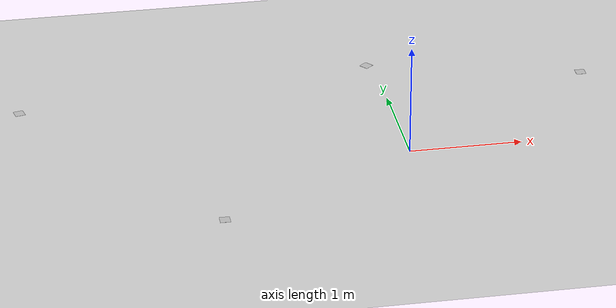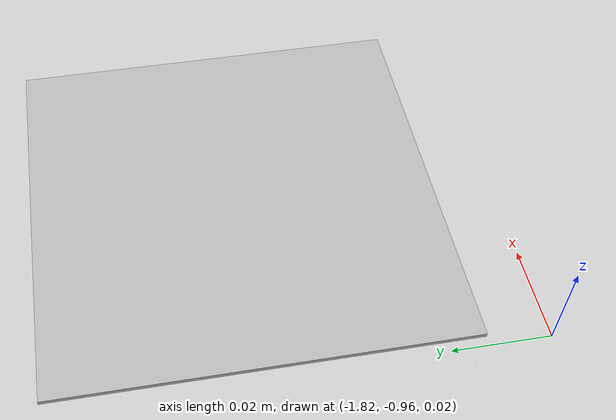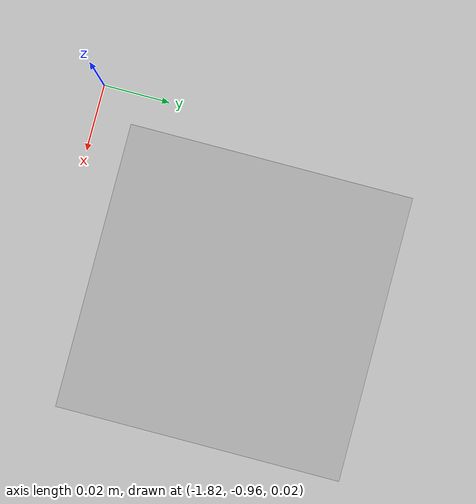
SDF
<?xml version="1.0" ?>
<sdf version="1.4">
  <world name="default">
    <include>
      <uri>model://ground_plane</uri>
	  <pose frame=''>0 0 0 0 0 0 </pose>
    </include>
    <include>
      <uri>model://sun</uri>
    </include>

    <model name='tagcode1'>
	<static>1</static>
	<link name='link'>
		<visual name='visual'>
		<cast_shadows>1</cast_shadows>
		<geometry>
		<box>
		<size> 0.09 0.09 0.001</size>
		</box>
		</geometry>
		<material>
		<script>
			<uri>model://tagcode/materials/scripts</uri>
			<uri>model://tagcode/materials/textures</uri>
			<name>tagcode1</name>
		</script>
		</material>
		</visual>
		<self_collide>0</self_collide>
		<kinematic>0</kinematic>
	</link>
	<pose frame=''>1.849850 1.183890 0.011 0 0 0 </pose>
    </model>

    <model name='tagcode2'>
	<static>1</static>
	<link name='link'>
		<visual name='visual'>
		<cast_shadows>1</cast_shadows>
		<geometry>
		<box>
		<size> 0.09 0.09 0.001</size>
		</box>
		</geometry>
		<material>
		<script>
			<uri>model://tagcode/materials/scripts</uri>
			<uri>model://tagcode/materials/textures</uri>
			<name>tagcode4</name>
		</script>
		</material>
		</visual>
		<self_collide>0</self_collide>
		<kinematic>0</kinematic>
	</link>
	<pose frame=''>-3.304920 1.259630 0.011 0 0 0.21 </pose>
    </model>

    <model name='tagcode3'>
	<static>1</static>
	<link name='link'>
		<visual name='visual'>
		<cast_shadows>1</cast_shadows>
		<geometry>
		<box>
		<size> 0.09 0.09 0.001</size>
		</box>
		</geometry>
		<material>
		<script>
			<uri>model://tagcode/materials/scripts</uri>
			<uri>model://tagcode/materials/textures</uri>
			<name>tagcode2</name>
		</script>
		</material>
		</visual>
		<self_collide>0</self_collide>
		<kinematic>0</kinematic>
	</link>
	<pose frame=''>-0.066267 1.644970 0.011 0 0 0.7 </pose>
    </model>

    <model name='tagcode4'>
	<static>1</static>
	<link name='link'>
		<visual name='visual'>
		<cast_shadows>1</cast_shadows>
		<geometry>
		<box>
		<size> 0.09 0.09 0.001</size>
		</box>
		</geometry>
		<material>
		<script>
			<uri>model://tagcode/materials/scripts</uri>
			<uri>model://tagcode/materials/textures</uri>
			<name>tagcode3</name>
		</script>
		</material>
		</visual>
		<self_collide>0</self_collide>
		<kinematic>0</kinematic>
	</link>
	<pose frame=''>-1.767720 -0.906162 0.011 0 0 0 </pose>
    </model>

  </world>
</sdf>
